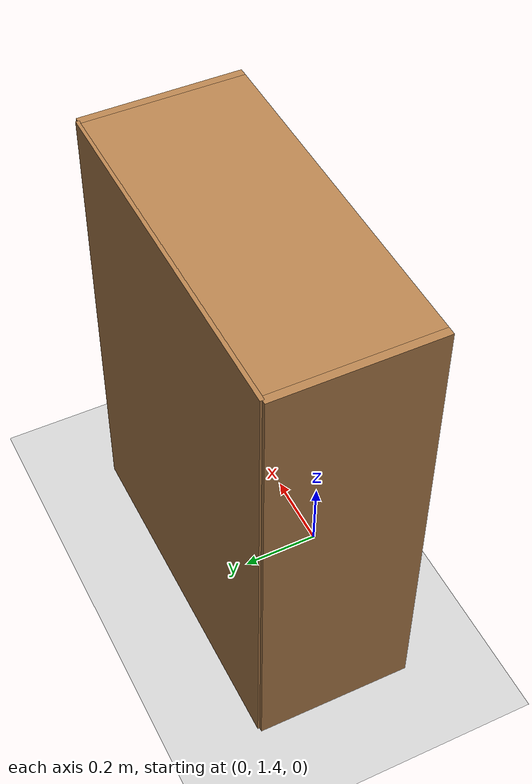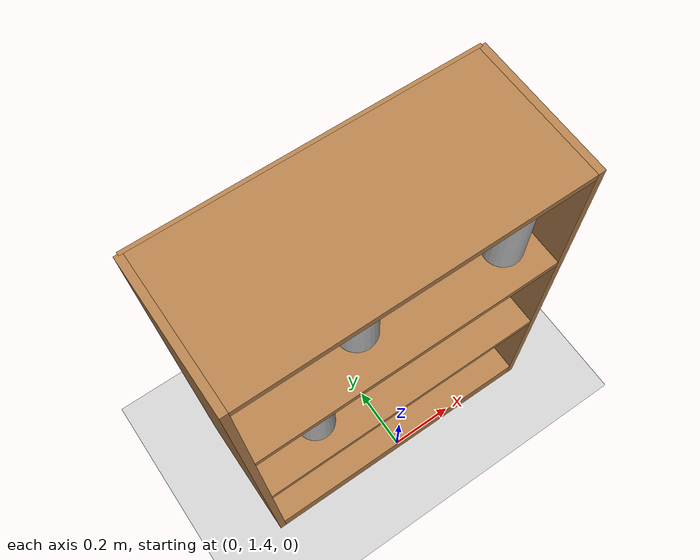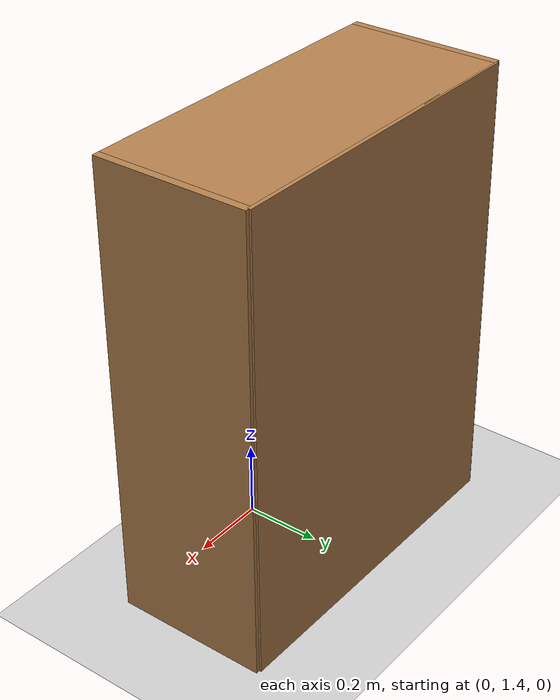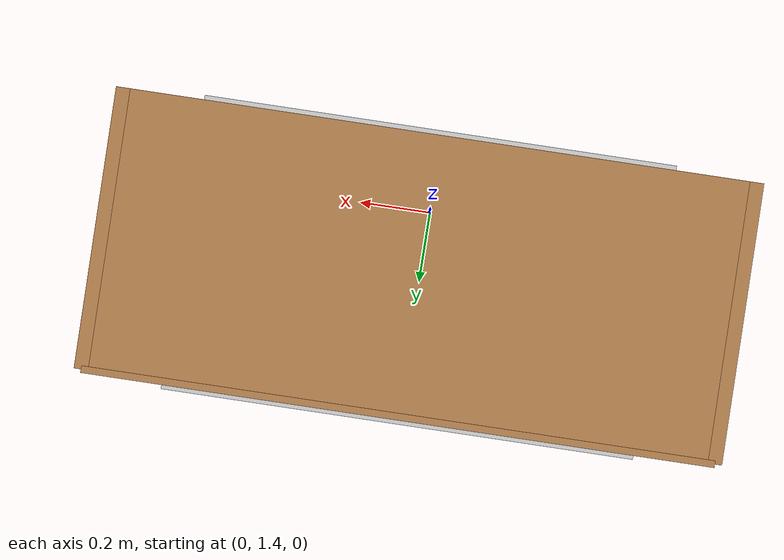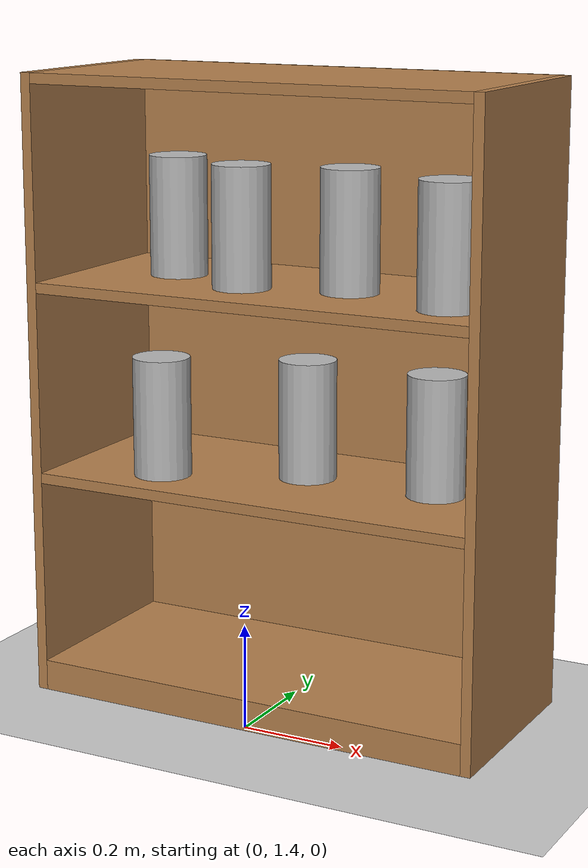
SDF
<sdf version="1.6">
 <world name="default">
  <light name="sun" type="directional">
   <pose>0 0 10 0 -0 0</pose>
   <diffuse>0.8 0.8 0.8 1</diffuse>
   <specular>0.2 0.2 0.2 1</specular>
   <attenuation>
    <range>1000</range>
    <constant>0.9</constant>
    <linear>0.01</linear>
    <quadratic>0.001</quadratic>
   </attenuation>
   <direction>-0.5 0.1 -0.9</direction>
  </light>
  <model name="ground_plane">
   <static>1</static>
   <link name="link">
    <collision name="collision">
     <geometry><plane><normal>0 0 1</normal><size>100 100</size></plane></geometry>
     <surface>
      <contact><collide_bitmask>65535</collide_bitmask></contact>
      <friction><ode><mu>100</mu><mu2>50</mu2></ode></friction>
     </surface>
    </collision>
    <visual name="visual">
     <cast_shadows>0</cast_shadows>
     <geometry><plane><normal>0 0 1</normal><size>100 100</size></plane></geometry>
     <material>
      <script><uri>file://media/materials/scripts/gazebo.material</uri><name>Gazebo/Grey</name></script>
     </material>
    </visual>
   </link>
  </model>
  <gravity>0 0 -9.8</gravity>
  <magnetic_field>6e-06 2.3e-05 -4.2e-05</magnetic_field>
  <atmosphere type="adiabatic"/>
  <physics name="default_physics" default="0" type="ode">
   <max_step_size>0.001</max_step_size>
   <real_time_factor>1</real_time_factor>
   <real_time_update_rate>1000</real_time_update_rate>
  </physics>
  <scene><ambient>0.4 0.4 0.4 1</ambient><background>0.7 0.7 0.7 1</background><shadows>1</shadows></scene>
  <audio><device>default</device></audio>
  <spherical_coordinates>
   <surface_model>EARTH_WGS84</surface_model>
   <latitude_deg>0</latitude_deg>
   <longitude_deg>0</longitude_deg>
   <elevation>0</elevation>
   <heading_deg>0</heading_deg>
  </spherical_coordinates>
  <model name="bookshelf">
   <static>1</static>
   <link name="bookshelf::link">
    <inertial><mass>1</mass></inertial>
    <collision name="back">
     <pose>0 0.005 0.6 0 -0 0</pose>
     <geometry><box><size>0.9 0.01 1.2</size></box></geometry>
    </collision>
    <visual name="visual1">
     <pose>0 0.005 0.6 0 -0 0</pose>
     <geometry><box><size>0.9 0.01 1.2</size></box></geometry>
     <material>
      <script><uri>file://media/materials/scripts/gazebo.material</uri><name>Gazebo/Wood</name></script>
     </material>
    </visual>
    <collision name="left_side">
     <pose>0.45 -0.195 0.6 0 -0 0</pose>
     <geometry><box><size>0.02 0.4 1.2</size></box></geometry>
    </collision>
    <visual name="visual2">
     <pose>0.45 -0.195 0.6 0 -0 0</pose>
     <geometry><box><size>0.02 0.4 1.2</size></box></geometry>
     <material>
      <script><uri>file://media/materials/scripts/gazebo.material</uri><name>Gazebo/Wood</name></script>
     </material>
    </visual>
    <collision name="right_side">
     <pose>-0.45 -0.195 0.6 0 -0 0</pose>
     <geometry><box><size>0.02 0.4 1.2</size></box></geometry>
    </collision>
    <visual name="visual3">
     <pose>-0.45 -0.195 0.6 0 -0 0</pose>
     <geometry><box><size>0.02 0.4 1.2</size></box></geometry>
     <material>
      <script><uri>file://media/materials/scripts/gazebo.material</uri><name>Gazebo/Wood</name></script>
     </material>
    </visual>
    <collision name="bottom">
     <pose>0 -0.195 0.03 0 -0 0</pose>
     <geometry><box><size>0.88 0.4 0.06</size></box></geometry>
    </collision>
    <visual name="visual4">
     <pose>0 -0.195 0.03 0 -0 0</pose>
     <geometry><box><size>0.88 0.4 0.06</size></box></geometry>
     <material>
      <script><uri>file://media/materials/scripts/gazebo.material</uri><name>Gazebo/Wood</name></script>
     </material>
    </visual>
    <collision name="top">
     <pose>0 -0.195 1.19 0 -0 0</pose>
     <geometry><box><size>0.88 0.4 0.02</size></box></geometry>
    </collision>
    <visual name="visual5">
     <pose>0 -0.195 1.19 0 -0 0</pose>
     <geometry><box><size>0.88 0.4 0.02</size></box></geometry>
     <material>
      <script><uri>file://media/materials/scripts/gazebo.material</uri><name>Gazebo/Wood</name></script>
     </material>
    </visual>
    <collision name="low_shelf">
     <pose>0 -0.195 0.43 0 -0 0</pose>
     <geometry><box><size>0.88 0.4 0.02</size></box></geometry>
    </collision>
    <visual name="visual6">
     <pose>0 -0.195 0.43 0 -0 0</pose>
     <geometry><box><size>0.88 0.4 0.02</size></box></geometry>
     <material>
      <script><uri>file://media/materials/scripts/gazebo.material</uri><name>Gazebo/Wood</name></script>
     </material>
    </visual>
    <collision name="high_shelf">
     <pose>0 -0.195 0.8 0 -0 0</pose>
     <geometry><box><size>0.88 0.4 0.02</size></box></geometry>
    </collision>
    <visual name="visual7">
     <pose>0 -0.195 0.8 0 -0 0</pose>
     <geometry><box><size>0.88 0.4 0.02</size></box></geometry>
     <material>
      <script><uri>file://media/materials/scripts/gazebo.material</uri><name>Gazebo/Wood</name></script>
     </material>
    </visual>
   </link>
   <pose>0.002638 1.77915 -0 0 -0 0</pose>
  </model>
  <model name="beer">
   <link name="link">
    <pose>0 0 0.115 0 -0 0</pose>
    <inertial>
     <mass>0.39</mass>
     <inertia><ixx>0.00058</ixx><ixy>0</ixy><ixz>0</ixz><iyy>0.00058</iyy><iyz>0</iyz><izz>0.00019</izz></inertia>
    </inertial>
    <collision name="collision">
     <geometry><cylinder><radius>0.055</radius><length>0.23</length></cylinder></geometry>
    </collision>
    <visual name="visual">
     <geometry><cylinder><radius>0.055</radius><length>0.23</length></cylinder></geometry>
     <material>
      <script>
       <uri>model://beer/materials/scripts</uri>
       <uri>model://beer/materials/textures</uri>
       <name>Beer/Diffuse</name>
      </script>
     </material>
    </visual>
   </link>
   <pose>-0.246882 1.59042 0.809992 1e-06 -2.7e-05 0.000414</pose>
  </model>
  <model name="beer_clone">
   <link name="link">
    <pose>0 0 0.115 0 -0 0</pose>
    <inertial>
     <mass>0.39</mass>
     <inertia><ixx>0.00058</ixx><ixy>0</ixy><ixz>0</ixz><iyy>0.00058</iyy><iyz>0</iyz><izz>0.00019</izz></inertia>
    </inertial>
    <collision name="collision">
     <geometry><cylinder><radius>0.055</radius><length>0.23</length></cylinder></geometry>
    </collision>
    <visual name="visual">
     <geometry><cylinder><radius>0.055</radius><length>0.23</length></cylinder></geometry>
     <material>
      <script>
       <uri>model://beer/materials/scripts</uri>
       <uri>model://beer/materials/textures</uri>
       <name>Beer/Diffuse</name>
      </script>
     </material>
    </visual>
   </link>
   <pose>-0.068826 1.51739 0.810001 1e-06 -2.7e-05 0.00012</pose>
  </model>
  <model name="beer_clone_clone">
   <link name="link">
    <pose>0 0 0.115 0 -0 0</pose>
    <inertial>
     <mass>0.39</mass>
     <inertia><ixx>0.00058</ixx><ixy>0</ixy><ixz>0</ixz><iyy>0.00058</iyy><iyz>0</iyz><izz>0.00019</izz></inertia>
    </inertial>
    <collision name="collision">
     <geometry><cylinder><radius>0.055</radius><length>0.23</length></cylinder></geometry>
    </collision>
    <visual name="visual">
     <geometry><cylinder><radius>0.055</radius><length>0.23</length></cylinder></geometry>
     <material>
      <script>
       <uri>model://beer/materials/scripts</uri>
       <uri>model://beer/materials/textures</uri>
       <name>Beer/Diffuse</name>
      </script>
     </material>
    </visual>
   </link>
   <pose>0.128894 1.56715 0.810002 3.1e-05 1e-06 0.000452</pose>
  </model>
  <model name="beer_clone_clone_clone">
   <link name="link">
    <pose>0 0 0.115 0 -0 0</pose>
    <inertial>
     <mass>0.39</mass>
     <inertia><ixx>0.00058</ixx><ixy>0</ixy><ixz>0</ixz><iyy>0.00058</iyy><iyz>0</iyz><izz>0.00019</izz></inertia>
    </inertial>
    <collision name="collision">
     <geometry><cylinder><radius>0.055</radius><length>0.23</length></cylinder></geometry>
    </collision>
    <visual name="visual">
     <geometry><cylinder><radius>0.055</radius><length>0.23</length></cylinder></geometry>
     <material>
      <script>
       <uri>model://beer/materials/scripts</uri>
       <uri>model://beer/materials/textures</uri>
       <name>Beer/Diffuse</name>
      </script>
     </material>
    </visual>
   </link>
   <pose>0.355019 1.49538 0.809991 -1e-06 -5e-06 0.000549</pose>
  </model>
  <model name="beer_clone_clone_0">
   <link name="link">
    <pose>0 0 0.115 0 -0 0</pose>
    <inertial>
     <mass>0.39</mass>
     <inertia><ixx>0.00058</ixx><ixy>0</ixy><ixz>0</ixz><iyy>0.00058</iyy><iyz>0</iyz><izz>0.00019</izz></inertia>
    </inertial>
    <collision name="collision">
     <geometry><cylinder><radius>0.055</radius><length>0.23</length></cylinder></geometry>
    </collision>
    <visual name="visual">
     <geometry><cylinder><radius>0.055</radius><length>0.23</length></cylinder></geometry>
     <material>
      <script>
       <uri>model://beer/materials/scripts</uri>
       <uri>model://beer/materials/textures</uri>
       <name>Beer/Diffuse</name>
      </script>
     </material>
    </visual>
   </link>
   <pose>0.027423 1.59698 0.440002 3.4e-05 -0 0.000402</pose>
  </model>
  <model name="beer_clone_clone_0_clone">
   <link name="link">
    <pose>0 0 0.115 0 -0 0</pose>
    <inertial>
     <mass>0.39</mass>
     <inertia><ixx>0.00058</ixx><ixy>0</ixy><ixz>0</ixz><iyy>0.00058</iyy><iyz>0</iyz><izz>0.00019</izz></inertia>
    </inertial>
    <collision name="collision">
     <geometry><cylinder><radius>0.055</radius><length>0.23</length></cylinder></geometry>
    </collision>
    <visual name="visual">
     <geometry><cylinder><radius>0.055</radius><length>0.23</length></cylinder></geometry>
     <material>
      <script>
       <uri>model://beer/materials/scripts</uri>
       <uri>model://beer/materials/textures</uri>
       <name>Beer/Diffuse</name>
      </script>
     </material>
    </visual>
   </link>
   <pose>0.292407 1.59753 0.439991 1.8e-05 1.5e-05 0.000368</pose>
  </model>
  <model name="beer_clone_clone_0_clone_clone">
   <link name="link">
    <pose>0 0 0.115 0 -0 0</pose>
    <inertial>
     <mass>0.39</mass>
     <inertia><ixx>0.00058</ixx><ixy>0</ixy><ixz>0</ixz><iyy>0.00058</iyy><iyz>0</iyz><izz>0.00019</izz></inertia>
    </inertial>
    <collision name="collision">
     <geometry><cylinder><radius>0.055</radius><length>0.23</length></cylinder></geometry>
    </collision>
    <visual name="visual">
     <geometry><cylinder><radius>0.055</radius><length>0.23</length></cylinder></geometry>
     <material>
      <script>
       <uri>model://beer/materials/scripts</uri>
       <uri>model://beer/materials/textures</uri>
       <name>Beer/Diffuse</name>
      </script>
     </material>
    </visual>
   </link>
   <pose>-0.228524 1.48992 0.439992 2.6e-05 1.8e-05 0.000491</pose>
  </model>
 </world>
</sdf>
